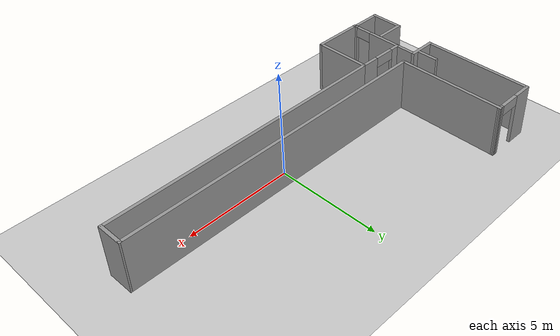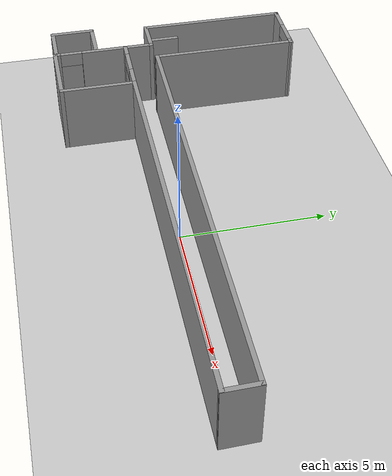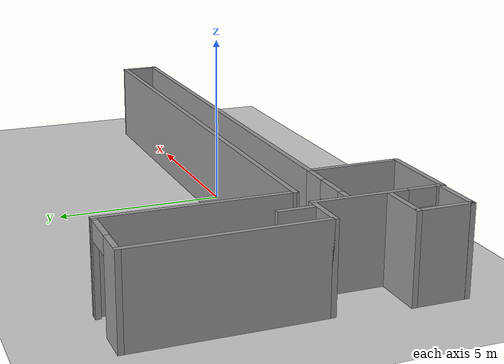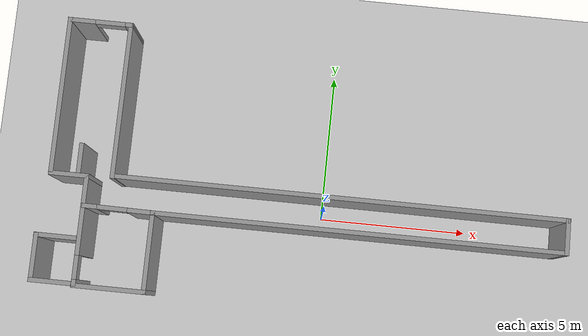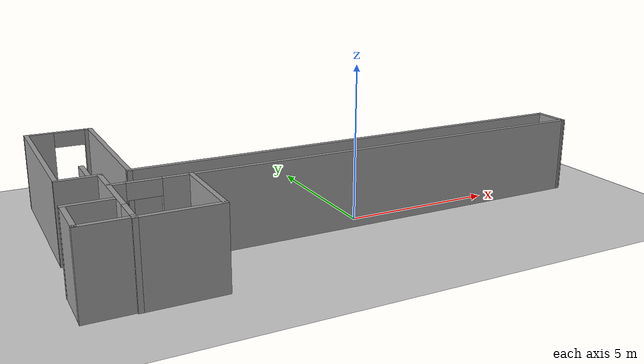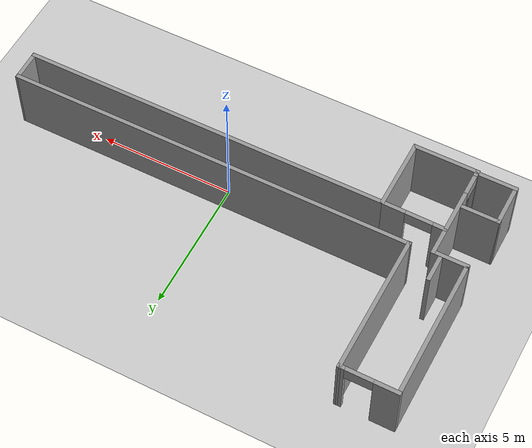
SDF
<?xml version="1.0" ?>
<sdf version="1.4">
  <world name="default">
    <include>
      <uri>model://ground_plane</uri>
    </include>
    <include>
      <uri>model://sun</uri>
    </include>
    <include>
      <uri>model://singtel_floorplan/singtel_floor4_out</uri>
      <name>singtel_floor4_out</name>
    </include>
  </world>
</sdf>

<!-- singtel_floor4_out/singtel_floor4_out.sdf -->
<sdf version='1.6'>
  <model name='singtel_floor4_out'>
    <pose frame=''>-0.602243 1.27781 0 0 -0 0</pose>
    <link name='Wall_10'>
      <collision name='Wall_10_Collision'>
        <geometry>
          <box>
            <size>5.25 0.15 2.5</size>
          </box>
        </geometry>
        <pose frame=''>0 0 1.25 0 -0 0</pose>
      </collision>
      <visual name='Wall_10_Visual'>
        <pose frame=''>0 0 1.25 0 -0 0</pose>
        <geometry>
          <box>
            <size>5.25 0.15 2.5</size>
          </box>
        </geometry>
        <material>
          <script>
            <uri>file://media/materials/scripts/gazebo.material</uri>
            <name>Gazebo/Grey</name>
          </script>
          <ambient>1 1 1 1</ambient>
        </material>
        <meta>
          <layer>0</layer>
        </meta>
      </visual>
      <pose frame=''>-8.45064 1.8499 0 0 -0 -1.5708</pose>
    </link>
    <link name='Wall_12'>
      <collision name='Wall_12_Collision'>
        <geometry>
          <box>
            <size>2.75 0.15 2.5</size>
          </box>
        </geometry>
        <pose frame=''>0 0 1.25 0 -0 0</pose>
      </collision>
      <visual name='Wall_12_Visual'>
        <pose frame=''>0 0 1.25 0 -0 0</pose>
        <geometry>
          <box>
            <size>2.75 0.15 2.5</size>
          </box>
        </geometry>
        <material>
          <script>
            <uri>file://media/materials/scripts/gazebo.material</uri>
            <name>Gazebo/Grey</name>
          </script>
          <ambient>1 1 1 1</ambient>
        </material>
        <meta>
          <layer>0</layer>
        </meta>
      </visual>
      <pose frame=''>-4.95065 -3.1001 0 0 -0 -1.5708</pose>
    </link>
    <link name='Wall_13'>
      <collision name='Wall_13_Collision'>
        <geometry>
          <box>
            <size>2.45 0.15 2.5</size>
          </box>
        </geometry>
        <pose frame=''>0 0 1.25 0 -0 0</pose>
      </collision>
      <visual name='Wall_13_Visual'>
        <pose frame=''>0 0 1.25 0 -0 0</pose>
        <geometry>
          <box>
            <size>2.45 0.15 2.5</size>
          </box>
        </geometry>
        <material>
          <script>
            <uri>file://media/materials/scripts/gazebo.material</uri>
            <name>Gazebo/Grey</name>
          </script>
          <ambient>1 1 1 1</ambient>
        </material>
        <meta>
          <layer>0</layer>
        </meta>
      </visual>
      <pose frame=''>-6.10065 -4.4001 0 0 -0 3.14159</pose>
    </link>
    <link name='Wall_17'>
      <pose frame=''>-7.25065 -2.6001 0 0 -0 1.5708</pose>
      <visual name='Wall_17_Visual_0'>
        <pose frame=''>-1.73948 0 1.25 0 -0 0</pose>
        <geometry>
          <box>
            <size>0.271046 0.15 2.5</size>
          </box>
        </geometry>
        <material>
          <script>
            <uri>file://media/materials/scripts/gazebo.material</uri>
            <name>Gazebo/Grey</name>
          </script>
          <ambient>1 1 1 1</ambient>
        </material>
        <meta>
          <layer>0</layer>
        </meta>
      </visual>
      <collision name='Wall_17_Collision_0'>
        <geometry>
          <box>
            <size>0.271046 0.15 2.5</size>
          </box>
        </geometry>
        <pose frame=''>-1.73948 0 1.25 0 -0 0</pose>
      </collision>
      <visual name='Wall_17_Visual_1'>
        <pose frame=''>0.530523 0 1.25 0 -0 0</pose>
        <geometry>
          <box>
            <size>2.68895 0.15 2.5</size>
          </box>
        </geometry>
        <material>
          <script>
            <uri>file://media/materials/scripts/gazebo.material</uri>
            <name>Gazebo/Grey</name>
          </script>
          <ambient>1 1 1 1</ambient>
        </material>
        <meta>
          <layer>0</layer>
        </meta>
      </visual>
      <collision name='Wall_17_Collision_1'>
        <geometry>
          <box>
            <size>2.68895 0.15 2.5</size>
          </box>
        </geometry>
        <pose frame=''>0.530523 0 1.25 0 -0 0</pose>
      </collision>
      <visual name='Wall_17_Visual_2'>
        <pose frame=''>-1.20895 0 2.25 0 -0 0</pose>
        <geometry>
          <box>
            <size>0.79 0.15 0.5</size>
          </box>
        </geometry>
        <material>
          <script>
            <uri>file://media/materials/scripts/gazebo.material</uri>
            <name>Gazebo/Grey</name>
          </script>
          <ambient>1 1 1 1</ambient>
        </material>
        <meta>
          <layer>0</layer>
        </meta>
      </visual>
      <collision name='Wall_17_Collision_2'>
        <geometry>
          <box>
            <size>0.79 0.15 0.5</size>
          </box>
        </geometry>
        <pose frame=''>-1.20895 0 2.25 0 -0 0</pose>
      </collision>
    </link>
    <link name='Wall_18'>
      <collision name='Wall_18_Collision'>
        <geometry>
          <box>
            <size>1.35 0.15 2.5</size>
          </box>
        </geometry>
        <pose frame=''>0 0 1.25 0 -0 0</pose>
      </collision>
      <visual name='Wall_18_Visual'>
        <pose frame=''>0 0 1.25 0 -0 0</pose>
        <geometry>
          <box>
            <size>1.35 0.15 2.5</size>
          </box>
        </geometry>
        <material>
          <script>
            <uri>file://media/materials/scripts/gazebo.material</uri>
            <name>Gazebo/Grey</name>
          </script>
          <ambient>1 1 1 1</ambient>
        </material>
        <meta>
          <layer>0</layer>
        </meta>
      </visual>
      <pose frame=''>-7.85065 -0.800097 0 0 -0 3.14159</pose>
    </link>
    <link name='Wall_2'>
      <collision name='Wall_2_Collision'>
        <geometry>
          <box>
            <size>13.75 0.15 2.5</size>
          </box>
        </geometry>
        <pose frame=''>0 0 1.25 0 -0 0</pose>
      </collision>
      <visual name='Wall_2_Visual'>
        <pose frame=''>0 0 1.25 0 -0 0</pose>
        <geometry>
          <box>
            <size>13.75 0.15 2.5</size>
          </box>
        </geometry>
        <material>
          <script>
            <uri>file://media/materials/scripts/gazebo.material</uri>
            <name>Gazebo/Grey</name>
          </script>
          <ambient>1 1 1 1</ambient>
        </material>
        <meta>
          <layer>0</layer>
        </meta>
      </visual>
      <pose frame=''>1.84935 -1.79249 0 0 -0 0.001118</pose>
    </link>
    <link name='Wall_21'>
      <collision name='Wall_21_Collision'>
        <geometry>
          <box>
            <size>1 0.15 2.5</size>
          </box>
        </geometry>
        <pose frame=''>0 0 1.25 0 -0 0</pose>
      </collision>
      <visual name='Wall_21_Visual'>
        <pose frame=''>0 0 1.25 0 -0 0</pose>
        <geometry>
          <box>
            <size>1 0.15 2.5</size>
          </box>
        </geometry>
        <material>
          <script>
            <uri>file://media/materials/scripts/gazebo.material</uri>
            <name>Gazebo/Grey</name>
          </script>
          <ambient>1 1 1 1</ambient>
        </material>
        <meta>
          <layer>0</layer>
        </meta>
      </visual>
      <pose frame=''>-7.54174 -0.225075 0 0 -0 -1.5708</pose>
    </link>
    <link name='Wall_23'>
      <pose frame=''>-6.0865 -1.78865 0 0 -0 -0.010073</pose>
      <visual name='Wall_23_Visual_0'>
        <pose frame=''>-0.959569 0 1.25 0 -0 0</pose>
        <geometry>
          <box>
            <size>0.502687 0.15 2.5</size>
          </box>
        </geometry>
        <material>
          <script>
            <uri>file://media/materials/scripts/gazebo.material</uri>
            <name>Gazebo/Grey</name>
          </script>
          <ambient>1 1 1 1</ambient>
        </material>
        <meta>
          <layer>0</layer>
        </meta>
      </visual>
      <collision name='Wall_23_Collision_0'>
        <geometry>
          <box>
            <size>0.502687 0.15 2.5</size>
          </box>
        </geometry>
        <pose frame=''>-0.959569 0 1.25 0 -0 0</pose>
      </collision>
      <visual name='Wall_23_Visual_1'>
        <pose frame=''>0.751343 0 1.25 0 -0 0</pose>
        <geometry>
          <box>
            <size>0.919138 0.15 2.5</size>
          </box>
        </geometry>
        <material>
          <script>
            <uri>file://media/materials/scripts/gazebo.material</uri>
            <name>Gazebo/Grey</name>
          </script>
          <ambient>1 1 1 1</ambient>
        </material>
        <meta>
          <layer>0</layer>
        </meta>
      </visual>
      <collision name='Wall_23_Collision_1'>
        <geometry>
          <box>
            <size>0.919138 0.15 2.5</size>
          </box>
        </geometry>
        <pose frame=''>0.751343 0 1.25 0 -0 0</pose>
      </collision>
      <visual name='Wall_23_Visual_2'>
        <pose frame=''>-0.208226 0 2.25 0 -0 0</pose>
        <geometry>
          <box>
            <size>1 0.15 0.5</size>
          </box>
        </geometry>
        <material>
          <script>
            <uri>file://media/materials/scripts/gazebo.material</uri>
            <name>Gazebo/Grey</name>
          </script>
          <ambient>1 1 1 1</ambient>
        </material>
        <meta>
          <layer>0</layer>
        </meta>
      </visual>
      <collision name='Wall_23_Collision_2'>
        <geometry>
          <box>
            <size>1 0.15 0.5</size>
          </box>
        </geometry>
        <pose frame=''>-0.208226 0 2.25 0 -0 0</pose>
      </collision>
    </link>
    <link name='Wall_27'>
      <collision name='Wall_27_Collision'>
        <geometry>
          <box>
            <size>1.41 0.15 2.5</size>
          </box>
        </geometry>
        <pose frame=''>0 0 1.25 0 -0 0</pose>
      </collision>
      <visual name='Wall_27_Visual'>
        <pose frame=''>0 0 1.25 0 -0 0</pose>
        <geometry>
          <box>
            <size>1.41 0.15 2.5</size>
          </box>
        </geometry>
        <material>
          <script>
            <uri>file://media/materials/scripts/gazebo.material</uri>
            <name>Gazebo/Grey</name>
          </script>
          <ambient>1 1 1 1</ambient>
        </material>
        <meta>
          <layer>0</layer>
        </meta>
      </visual>
      <pose frame=''>-8.03548 -2.87008 0 0 -0 3.14159</pose>
    </link>
    <link name='Wall_29'>
      <collision name='Wall_29_Collision'>
        <geometry>
          <box>
            <size>1.41 0.15 2.5</size>
          </box>
        </geometry>
        <pose frame=''>0 0 1.25 0 -0 0</pose>
      </collision>
      <visual name='Wall_29_Visual'>
        <pose frame=''>0 0 1.25 0 -0 0</pose>
        <geometry>
          <box>
            <size>1.41 0.15 2.5</size>
          </box>
        </geometry>
        <material>
          <script>
            <uri>file://media/materials/scripts/gazebo.material</uri>
            <name>Gazebo/Grey</name>
          </script>
          <ambient>1 1 1 1</ambient>
        </material>
        <meta>
          <layer>0</layer>
        </meta>
      </visual>
      <pose frame=''>-8.03548 -4.35128 0 0 -0 3.14159</pose>
    </link>
    <link name='Wall_3'>
      <collision name='Wall_3_Collision'>
        <geometry>
          <box>
            <size>1.22363 0.15 2.5</size>
          </box>
        </geometry>
        <pose frame=''>0 0 1.25 0 -0 0</pose>
      </collision>
      <visual name='Wall_3_Visual'>
        <pose frame=''>0 0 1.25 0 -0 0</pose>
        <geometry>
          <box>
            <size>1.22363 0.15 2.5</size>
          </box>
        </geometry>
        <material>
          <script>
            <uri>file://media/materials/scripts/gazebo.material</uri>
            <name>Gazebo/Grey</name>
          </script>
          <ambient>1 1 1 1</ambient>
        </material>
        <meta>
          <layer>0</layer>
        </meta>
      </visual>
      <pose frame=''>8.65795 -1.24811 0 0 -0 1.58312</pose>
    </link>
    <link name='Wall_31'>
      <collision name='Wall_31_Collision'>
        <geometry>
          <box>
            <size>1.63 0.15 2.5</size>
          </box>
        </geometry>
        <pose frame=''>0 0 1.25 0 -0 0</pose>
      </collision>
      <visual name='Wall_31_Visual'>
        <pose frame=''>0 0 1.25 0 -0 0</pose>
        <geometry>
          <box>
            <size>1.63 0.15 2.5</size>
          </box>
        </geometry>
        <material>
          <script>
            <uri>file://media/materials/scripts/gazebo.material</uri>
            <name>Gazebo/Grey</name>
          </script>
          <ambient>1 1 1 1</ambient>
        </material>
        <meta>
          <layer>0</layer>
        </meta>
      </visual>
      <pose frame=''>-8.66186 -3.61008 0 0 -0 -1.5708</pose>
    </link>
    <link name='Wall_4'>
      <collision name='Wall_4_Collision'>
        <geometry>
          <box>
            <size>15.2 0.15 2.5</size>
          </box>
        </geometry>
        <pose frame=''>0 0 1.25 0 -0 0</pose>
      </collision>
      <visual name='Wall_4_Visual'>
        <pose frame=''>0 0 1.25 0 -0 0</pose>
        <geometry>
          <box>
            <size>15.2 0.15 2.5</size>
          </box>
        </geometry>
        <material>
          <script>
            <uri>file://media/materials/scripts/gazebo.material</uri>
            <name>Gazebo/Grey</name>
          </script>
          <ambient>1 1 1 1</ambient>
        </material>
        <meta>
          <layer>0</layer>
        </meta>
      </visual>
      <pose frame=''>1.11113 -0.71233 0 0 -0 -3.14146</pose>
    </link>
    <link name='Wall_6'>
      <collision name='Wall_6_Collision'>
        <geometry>
          <box>
            <size>5.27647 0.15 2.5</size>
          </box>
        </geometry>
        <pose frame=''>0 0 1.25 0 -0 0</pose>
      </collision>
      <visual name='Wall_6_Visual'>
        <pose frame=''>0 0 1.25 0 -0 0</pose>
        <geometry>
          <box>
            <size>5.27647 0.15 2.5</size>
          </box>
        </geometry>
        <material>
          <script>
            <uri>file://media/materials/scripts/gazebo.material</uri>
            <name>Gazebo/Grey</name>
          </script>
          <ambient>1 1 1 1</ambient>
        </material>
        <meta>
          <layer>0</layer>
        </meta>
      </visual>
      <pose frame=''>-6.40726 1.83668 0 0 -0 1.56822</pose>
    </link>
    <link name='Wall_7'>
      <pose frame=''>-7.42565 4.3999 0 0 -0 3.14159</pose>
      <visual name='Wall_7_Visual_0'>
        <pose frame=''>-0.966372 0 1.25 0 -0 0</pose>
        <geometry>
          <box>
            <size>0.267257 0.15 2.5</size>
          </box>
        </geometry>
        <material>
          <script>
            <uri>file://media/materials/scripts/gazebo.material</uri>
            <name>Gazebo/Grey</name>
          </script>
          <ambient>1 1 1 1</ambient>
        </material>
        <meta>
          <layer>0</layer>
        </meta>
      </visual>
      <collision name='Wall_7_Collision_0'>
        <geometry>
          <box>
            <size>0.267257 0.15 2.5</size>
          </box>
        </geometry>
        <pose frame=''>-0.966372 0 1.25 0 -0 0</pose>
      </collision>
      <visual name='Wall_7_Visual_1'>
        <pose frame=''>0.633628 0 1.25 0 -0 0</pose>
        <geometry>
          <box>
            <size>0.932743 0.15 2.5</size>
          </box>
        </geometry>
        <material>
          <script>
            <uri>file://media/materials/scripts/gazebo.material</uri>
            <name>Gazebo/Grey</name>
          </script>
          <ambient>1 1 1 1</ambient>
        </material>
        <meta>
          <layer>0</layer>
        </meta>
      </visual>
      <collision name='Wall_7_Collision_1'>
        <geometry>
          <box>
            <size>0.932743 0.15 2.5</size>
          </box>
        </geometry>
        <pose frame=''>0.633628 0 1.25 0 -0 0</pose>
      </collision>
      <visual name='Wall_7_Visual_2'>
        <pose frame=''>-0.332743 0 2.25 0 -0 0</pose>
        <geometry>
          <box>
            <size>1 0.15 0.5</size>
          </box>
        </geometry>
        <material>
          <script>
            <uri>file://media/materials/scripts/gazebo.material</uri>
            <name>Gazebo/Grey</name>
          </script>
          <ambient>1 1 1 1</ambient>
        </material>
        <meta>
          <layer>0</layer>
        </meta>
      </visual>
      <collision name='Wall_7_Collision_2'>
        <geometry>
          <box>
            <size>1 0.15 0.5</size>
          </box>
        </geometry>
        <pose frame=''>-0.332743 0 2.25 0 -0 0</pose>
      </collision>
    </link>
    <static>1</static>
  </model>
</sdf>
